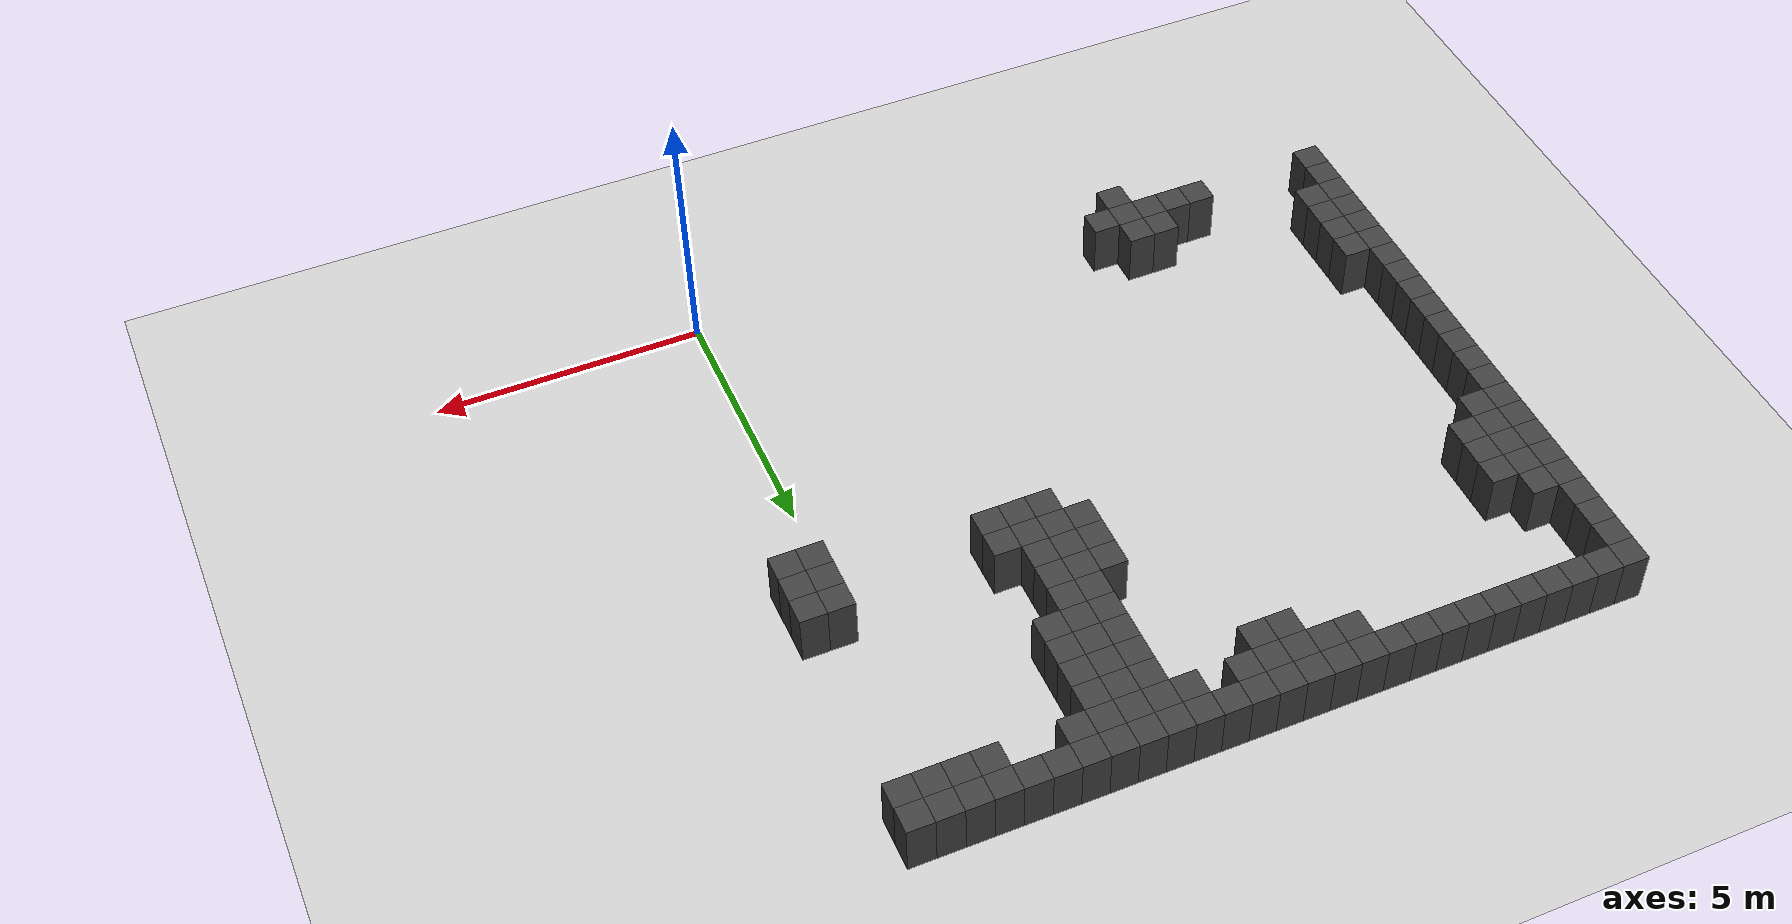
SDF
<sdf version="1.7">
 <world name="map_5836">
  <model name="ground_plane">
   <static>true</static>
   <link name="link">
    <collision name="collision">
     <geometry><plane><normal>0 0 1</normal><size>200 200</size></plane></geometry>
    </collision>
    <visual name="visual">
     <geometry><plane><normal>0 0 1</normal><size>200 200</size></plane></geometry>
     <material><ambient>0.8 0.8 0.8 1</ambient><diffuse>0.8 0.8 0.8 1</diffuse></material>
    </visual>
   </link>
  </model>
  <model name="maze_environment">
   <static>true</static>
   <link name="wall_0">
    <pose>-12.250 12.250 0.500 0 0 0</pose>
    <collision name="col"><geometry><box><size>0.5 0.5 1.0</size></box></geometry></collision>
    <visual name="vis">
     <geometry><box><size>0.5 0.5 1.0</size></box></geometry>
     <material><ambient>0.15 0.15 0.15 1</ambient><diffuse>0.25 0.25 0.25 1</diffuse></material>
    </visual>
   </link>
   <link name="wall_1">
    <pose>-11.750 12.250 0.500 0 0 0</pose>
    <collision name="col"><geometry><box><size>0.5 0.5 1.0</size></box></geometry></collision>
    <visual name="vis">
     <geometry><box><size>0.5 0.5 1.0</size></box></geometry>
     <material><ambient>0.15 0.15 0.15 1</ambient><diffuse>0.25 0.25 0.25 1</diffuse></material>
    </visual>
   </link>
   <link name="wall_2">
    <pose>-11.250 12.250 0.500 0 0 0</pose>
    <collision name="col"><geometry><box><size>0.5 0.5 1.0</size></box></geometry></collision>
    <visual name="vis">
     <geometry><box><size>0.5 0.5 1.0</size></box></geometry>
     <material><ambient>0.15 0.15 0.15 1</ambient><diffuse>0.25 0.25 0.25 1</diffuse></material>
    </visual>
   </link>
   <link name="wall_3">
    <pose>-10.750 12.250 0.500 0 0 0</pose>
    <collision name="col"><geometry><box><size>0.5 0.5 1.0</size></box></geometry></collision>
    <visual name="vis">
     <geometry><box><size>0.5 0.5 1.0</size></box></geometry>
     <material><ambient>0.15 0.15 0.15 1</ambient><diffuse>0.25 0.25 0.25 1</diffuse></material>
    </visual>
   </link>
   <link name="wall_4">
    <pose>-10.250 12.250 0.500 0 0 0</pose>
    <collision name="col"><geometry><box><size>0.5 0.5 1.0</size></box></geometry></collision>
    <visual name="vis">
     <geometry><box><size>0.5 0.5 1.0</size></box></geometry>
     <material><ambient>0.15 0.15 0.15 1</ambient><diffuse>0.25 0.25 0.25 1</diffuse></material>
    </visual>
   </link>
   <link name="wall_5">
    <pose>-9.750 12.250 0.500 0 0 0</pose>
    <collision name="col"><geometry><box><size>0.5 0.5 1.0</size></box></geometry></collision>
    <visual name="vis">
     <geometry><box><size>0.5 0.5 1.0</size></box></geometry>
     <material><ambient>0.15 0.15 0.15 1</ambient><diffuse>0.25 0.25 0.25 1</diffuse></material>
    </visual>
   </link>
   <link name="wall_6">
    <pose>-9.250 12.250 0.500 0 0 0</pose>
    <collision name="col"><geometry><box><size>0.5 0.5 1.0</size></box></geometry></collision>
    <visual name="vis">
     <geometry><box><size>0.5 0.5 1.0</size></box></geometry>
     <material><ambient>0.15 0.15 0.15 1</ambient><diffuse>0.25 0.25 0.25 1</diffuse></material>
    </visual>
   </link>
   <link name="wall_7">
    <pose>-8.750 12.250 0.500 0 0 0</pose>
    <collision name="col"><geometry><box><size>0.5 0.5 1.0</size></box></geometry></collision>
    <visual name="vis">
     <geometry><box><size>0.5 0.5 1.0</size></box></geometry>
     <material><ambient>0.15 0.15 0.15 1</ambient><diffuse>0.25 0.25 0.25 1</diffuse></material>
    </visual>
   </link>
   <link name="wall_8">
    <pose>-8.250 12.250 0.500 0 0 0</pose>
    <collision name="col"><geometry><box><size>0.5 0.5 1.0</size></box></geometry></collision>
    <visual name="vis">
     <geometry><box><size>0.5 0.5 1.0</size></box></geometry>
     <material><ambient>0.15 0.15 0.15 1</ambient><diffuse>0.25 0.25 0.25 1</diffuse></material>
    </visual>
   </link>
   <link name="wall_9">
    <pose>-7.750 12.250 0.500 0 0 0</pose>
    <collision name="col"><geometry><box><size>0.5 0.5 1.0</size></box></geometry></collision>
    <visual name="vis">
     <geometry><box><size>0.5 0.5 1.0</size></box></geometry>
     <material><ambient>0.15 0.15 0.15 1</ambient><diffuse>0.25 0.25 0.25 1</diffuse></material>
    </visual>
   </link>
   <link name="wall_10">
    <pose>-7.250 12.250 0.500 0 0 0</pose>
    <collision name="col"><geometry><box><size>0.5 0.5 1.0</size></box></geometry></collision>
    <visual name="vis">
     <geometry><box><size>0.5 0.5 1.0</size></box></geometry>
     <material><ambient>0.15 0.15 0.15 1</ambient><diffuse>0.25 0.25 0.25 1</diffuse></material>
    </visual>
   </link>
   <link name="wall_11">
    <pose>-6.750 12.250 0.500 0 0 0</pose>
    <collision name="col"><geometry><box><size>0.5 0.5 1.0</size></box></geometry></collision>
    <visual name="vis">
     <geometry><box><size>0.5 0.5 1.0</size></box></geometry>
     <material><ambient>0.15 0.15 0.15 1</ambient><diffuse>0.25 0.25 0.25 1</diffuse></material>
    </visual>
   </link>
   <link name="wall_12">
    <pose>-6.250 12.250 0.500 0 0 0</pose>
    <collision name="col"><geometry><box><size>0.5 0.5 1.0</size></box></geometry></collision>
    <visual name="vis">
     <geometry><box><size>0.5 0.5 1.0</size></box></geometry>
     <material><ambient>0.15 0.15 0.15 1</ambient><diffuse>0.25 0.25 0.25 1</diffuse></material>
    </visual>
   </link>
   <link name="wall_13">
    <pose>-5.750 12.250 0.500 0 0 0</pose>
    <collision name="col"><geometry><box><size>0.5 0.5 1.0</size></box></geometry></collision>
    <visual name="vis">
     <geometry><box><size>0.5 0.5 1.0</size></box></geometry>
     <material><ambient>0.15 0.15 0.15 1</ambient><diffuse>0.25 0.25 0.25 1</diffuse></material>
    </visual>
   </link>
   <link name="wall_14">
    <pose>-5.250 12.250 0.500 0 0 0</pose>
    <collision name="col"><geometry><box><size>0.5 0.5 1.0</size></box></geometry></collision>
    <visual name="vis">
     <geometry><box><size>0.5 0.5 1.0</size></box></geometry>
     <material><ambient>0.15 0.15 0.15 1</ambient><diffuse>0.25 0.25 0.25 1</diffuse></material>
    </visual>
   </link>
   <link name="wall_15">
    <pose>-4.750 12.250 0.500 0 0 0</pose>
    <collision name="col"><geometry><box><size>0.5 0.5 1.0</size></box></geometry></collision>
    <visual name="vis">
     <geometry><box><size>0.5 0.5 1.0</size></box></geometry>
     <material><ambient>0.15 0.15 0.15 1</ambient><diffuse>0.25 0.25 0.25 1</diffuse></material>
    </visual>
   </link>
   <link name="wall_16">
    <pose>-4.250 12.250 0.500 0 0 0</pose>
    <collision name="col"><geometry><box><size>0.5 0.5 1.0</size></box></geometry></collision>
    <visual name="vis">
     <geometry><box><size>0.5 0.5 1.0</size></box></geometry>
     <material><ambient>0.15 0.15 0.15 1</ambient><diffuse>0.25 0.25 0.25 1</diffuse></material>
    </visual>
   </link>
   <link name="wall_17">
    <pose>-3.750 12.250 0.500 0 0 0</pose>
    <collision name="col"><geometry><box><size>0.5 0.5 1.0</size></box></geometry></collision>
    <visual name="vis">
     <geometry><box><size>0.5 0.5 1.0</size></box></geometry>
     <material><ambient>0.15 0.15 0.15 1</ambient><diffuse>0.25 0.25 0.25 1</diffuse></material>
    </visual>
   </link>
   <link name="wall_18">
    <pose>-3.250 12.250 0.500 0 0 0</pose>
    <collision name="col"><geometry><box><size>0.5 0.5 1.0</size></box></geometry></collision>
    <visual name="vis">
     <geometry><box><size>0.5 0.5 1.0</size></box></geometry>
     <material><ambient>0.15 0.15 0.15 1</ambient><diffuse>0.25 0.25 0.25 1</diffuse></material>
    </visual>
   </link>
   <link name="wall_19">
    <pose>-2.750 12.250 0.500 0 0 0</pose>
    <collision name="col"><geometry><box><size>0.5 0.5 1.0</size></box></geometry></collision>
    <visual name="vis">
     <geometry><box><size>0.5 0.5 1.0</size></box></geometry>
     <material><ambient>0.15 0.15 0.15 1</ambient><diffuse>0.25 0.25 0.25 1</diffuse></material>
    </visual>
   </link>
   <link name="wall_20">
    <pose>-2.250 12.250 0.500 0 0 0</pose>
    <collision name="col"><geometry><box><size>0.5 0.5 1.0</size></box></geometry></collision>
    <visual name="vis">
     <geometry><box><size>0.5 0.5 1.0</size></box></geometry>
     <material><ambient>0.15 0.15 0.15 1</ambient><diffuse>0.25 0.25 0.25 1</diffuse></material>
    </visual>
   </link>
   <link name="wall_21">
    <pose>-1.750 12.250 0.500 0 0 0</pose>
    <collision name="col"><geometry><box><size>0.5 0.5 1.0</size></box></geometry></collision>
    <visual name="vis">
     <geometry><box><size>0.5 0.5 1.0</size></box></geometry>
     <material><ambient>0.15 0.15 0.15 1</ambient><diffuse>0.25 0.25 0.25 1</diffuse></material>
    </visual>
   </link>
   <link name="wall_22">
    <pose>-1.250 12.250 0.500 0 0 0</pose>
    <collision name="col"><geometry><box><size>0.5 0.5 1.0</size></box></geometry></collision>
    <visual name="vis">
     <geometry><box><size>0.5 0.5 1.0</size></box></geometry>
     <material><ambient>0.15 0.15 0.15 1</ambient><diffuse>0.25 0.25 0.25 1</diffuse></material>
    </visual>
   </link>
   <link name="wall_23">
    <pose>-0.750 12.250 0.500 0 0 0</pose>
    <collision name="col"><geometry><box><size>0.5 0.5 1.0</size></box></geometry></collision>
    <visual name="vis">
     <geometry><box><size>0.5 0.5 1.0</size></box></geometry>
     <material><ambient>0.15 0.15 0.15 1</ambient><diffuse>0.25 0.25 0.25 1</diffuse></material>
    </visual>
   </link>
   <link name="wall_24">
    <pose>-0.250 12.250 0.500 0 0 0</pose>
    <collision name="col"><geometry><box><size>0.5 0.5 1.0</size></box></geometry></collision>
    <visual name="vis">
     <geometry><box><size>0.5 0.5 1.0</size></box></geometry>
     <material><ambient>0.15 0.15 0.15 1</ambient><diffuse>0.25 0.25 0.25 1</diffuse></material>
    </visual>
   </link>
   <link name="wall_25">
    <pose>0.250 12.250 0.500 0 0 0</pose>
    <collision name="col"><geometry><box><size>0.5 0.5 1.0</size></box></geometry></collision>
    <visual name="vis">
     <geometry><box><size>0.5 0.5 1.0</size></box></geometry>
     <material><ambient>0.15 0.15 0.15 1</ambient><diffuse>0.25 0.25 0.25 1</diffuse></material>
    </visual>
   </link>
   <link name="wall_26">
    <pose>0.750 12.250 0.500 0 0 0</pose>
    <collision name="col"><geometry><box><size>0.5 0.5 1.0</size></box></geometry></collision>
    <visual name="vis">
     <geometry><box><size>0.5 0.5 1.0</size></box></geometry>
     <material><ambient>0.15 0.15 0.15 1</ambient><diffuse>0.25 0.25 0.25 1</diffuse></material>
    </visual>
   </link>
   <link name="wall_50">
    <pose>-12.250 11.750 0.500 0 0 0</pose>
    <collision name="col"><geometry><box><size>0.5 0.5 1.0</size></box></geometry></collision>
    <visual name="vis">
     <geometry><box><size>0.5 0.5 1.0</size></box></geometry>
     <material><ambient>0.15 0.15 0.15 1</ambient><diffuse>0.25 0.25 0.25 1</diffuse></material>
    </visual>
   </link>
   <link name="wall_51">
    <pose>-7.250 11.750 0.500 0 0 0</pose>
    <collision name="col"><geometry><box><size>0.5 0.5 1.0</size></box></geometry></collision>
    <visual name="vis">
     <geometry><box><size>0.5 0.5 1.0</size></box></geometry>
     <material><ambient>0.15 0.15 0.15 1</ambient><diffuse>0.25 0.25 0.25 1</diffuse></material>
    </visual>
   </link>
   <link name="wall_52">
    <pose>-6.750 11.750 0.500 0 0 0</pose>
    <collision name="col"><geometry><box><size>0.5 0.5 1.0</size></box></geometry></collision>
    <visual name="vis">
     <geometry><box><size>0.5 0.5 1.0</size></box></geometry>
     <material><ambient>0.15 0.15 0.15 1</ambient><diffuse>0.25 0.25 0.25 1</diffuse></material>
    </visual>
   </link>
   <link name="wall_53">
    <pose>-6.250 11.750 0.500 0 0 0</pose>
    <collision name="col"><geometry><box><size>0.5 0.5 1.0</size></box></geometry></collision>
    <visual name="vis">
     <geometry><box><size>0.5 0.5 1.0</size></box></geometry>
     <material><ambient>0.15 0.15 0.15 1</ambient><diffuse>0.25 0.25 0.25 1</diffuse></material>
    </visual>
   </link>
   <link name="wall_54">
    <pose>-5.750 11.750 0.500 0 0 0</pose>
    <collision name="col"><geometry><box><size>0.5 0.5 1.0</size></box></geometry></collision>
    <visual name="vis">
     <geometry><box><size>0.5 0.5 1.0</size></box></geometry>
     <material><ambient>0.15 0.15 0.15 1</ambient><diffuse>0.25 0.25 0.25 1</diffuse></material>
    </visual>
   </link>
   <link name="wall_55">
    <pose>-5.250 11.750 0.500 0 0 0</pose>
    <collision name="col"><geometry><box><size>0.5 0.5 1.0</size></box></geometry></collision>
    <visual name="vis">
     <geometry><box><size>0.5 0.5 1.0</size></box></geometry>
     <material><ambient>0.15 0.15 0.15 1</ambient><diffuse>0.25 0.25 0.25 1</diffuse></material>
    </visual>
   </link>
   <link name="wall_56">
    <pose>-4.250 11.750 0.500 0 0 0</pose>
    <collision name="col"><geometry><box><size>0.5 0.5 1.0</size></box></geometry></collision>
    <visual name="vis">
     <geometry><box><size>0.5 0.5 1.0</size></box></geometry>
     <material><ambient>0.15 0.15 0.15 1</ambient><diffuse>0.25 0.25 0.25 1</diffuse></material>
    </visual>
   </link>
   <link name="wall_57">
    <pose>-3.750 11.750 0.500 0 0 0</pose>
    <collision name="col"><geometry><box><size>0.5 0.5 1.0</size></box></geometry></collision>
    <visual name="vis">
     <geometry><box><size>0.5 0.5 1.0</size></box></geometry>
     <material><ambient>0.15 0.15 0.15 1</ambient><diffuse>0.25 0.25 0.25 1</diffuse></material>
    </visual>
   </link>
   <link name="wall_58">
    <pose>-3.250 11.750 0.500 0 0 0</pose>
    <collision name="col"><geometry><box><size>0.5 0.5 1.0</size></box></geometry></collision>
    <visual name="vis">
     <geometry><box><size>0.5 0.5 1.0</size></box></geometry>
     <material><ambient>0.15 0.15 0.15 1</ambient><diffuse>0.25 0.25 0.25 1</diffuse></material>
    </visual>
   </link>
   <link name="wall_59">
    <pose>-2.750 11.750 0.500 0 0 0</pose>
    <collision name="col"><geometry><box><size>0.5 0.5 1.0</size></box></geometry></collision>
    <visual name="vis">
     <geometry><box><size>0.5 0.5 1.0</size></box></geometry>
     <material><ambient>0.15 0.15 0.15 1</ambient><diffuse>0.25 0.25 0.25 1</diffuse></material>
    </visual>
   </link>
   <link name="wall_60">
    <pose>-2.250 11.750 0.500 0 0 0</pose>
    <collision name="col"><geometry><box><size>0.5 0.5 1.0</size></box></geometry></collision>
    <visual name="vis">
     <geometry><box><size>0.5 0.5 1.0</size></box></geometry>
     <material><ambient>0.15 0.15 0.15 1</ambient><diffuse>0.25 0.25 0.25 1</diffuse></material>
    </visual>
   </link>
   <link name="wall_61">
    <pose>-0.750 11.750 0.500 0 0 0</pose>
    <collision name="col"><geometry><box><size>0.5 0.5 1.0</size></box></geometry></collision>
    <visual name="vis">
     <geometry><box><size>0.5 0.5 1.0</size></box></geometry>
     <material><ambient>0.15 0.15 0.15 1</ambient><diffuse>0.25 0.25 0.25 1</diffuse></material>
    </visual>
   </link>
   <link name="wall_62">
    <pose>-0.250 11.750 0.500 0 0 0</pose>
    <collision name="col"><geometry><box><size>0.5 0.5 1.0</size></box></geometry></collision>
    <visual name="vis">
     <geometry><box><size>0.5 0.5 1.0</size></box></geometry>
     <material><ambient>0.15 0.15 0.15 1</ambient><diffuse>0.25 0.25 0.25 1</diffuse></material>
    </visual>
   </link>
   <link name="wall_63">
    <pose>0.250 11.750 0.500 0 0 0</pose>
    <collision name="col"><geometry><box><size>0.5 0.5 1.0</size></box></geometry></collision>
    <visual name="vis">
     <geometry><box><size>0.5 0.5 1.0</size></box></geometry>
     <material><ambient>0.15 0.15 0.15 1</ambient><diffuse>0.25 0.25 0.25 1</diffuse></material>
    </visual>
   </link>
   <link name="wall_64">
    <pose>0.750 11.750 0.500 0 0 0</pose>
    <collision name="col"><geometry><box><size>0.5 0.5 1.0</size></box></geometry></collision>
    <visual name="vis">
     <geometry><box><size>0.5 0.5 1.0</size></box></geometry>
     <material><ambient>0.15 0.15 0.15 1</ambient><diffuse>0.25 0.25 0.25 1</diffuse></material>
    </visual>
   </link>
   <link name="wall_72">
    <pose>-12.250 11.250 0.500 0 0 0</pose>
    <collision name="col"><geometry><box><size>0.5 0.5 1.0</size></box></geometry></collision>
    <visual name="vis">
     <geometry><box><size>0.5 0.5 1.0</size></box></geometry>
     <material><ambient>0.15 0.15 0.15 1</ambient><diffuse>0.25 0.25 0.25 1</diffuse></material>
    </visual>
   </link>
   <link name="wall_73">
    <pose>-6.250 11.250 0.500 0 0 0</pose>
    <collision name="col"><geometry><box><size>0.5 0.5 1.0</size></box></geometry></collision>
    <visual name="vis">
     <geometry><box><size>0.5 0.5 1.0</size></box></geometry>
     <material><ambient>0.15 0.15 0.15 1</ambient><diffuse>0.25 0.25 0.25 1</diffuse></material>
    </visual>
   </link>
   <link name="wall_74">
    <pose>-5.750 11.250 0.500 0 0 0</pose>
    <collision name="col"><geometry><box><size>0.5 0.5 1.0</size></box></geometry></collision>
    <visual name="vis">
     <geometry><box><size>0.5 0.5 1.0</size></box></geometry>
     <material><ambient>0.15 0.15 0.15 1</ambient><diffuse>0.25 0.25 0.25 1</diffuse></material>
    </visual>
   </link>
   <link name="wall_75">
    <pose>-3.750 11.250 0.500 0 0 0</pose>
    <collision name="col"><geometry><box><size>0.5 0.5 1.0</size></box></geometry></collision>
    <visual name="vis">
     <geometry><box><size>0.5 0.5 1.0</size></box></geometry>
     <material><ambient>0.15 0.15 0.15 1</ambient><diffuse>0.25 0.25 0.25 1</diffuse></material>
    </visual>
   </link>
   <link name="wall_76">
    <pose>-3.250 11.250 0.500 0 0 0</pose>
    <collision name="col"><geometry><box><size>0.5 0.5 1.0</size></box></geometry></collision>
    <visual name="vis">
     <geometry><box><size>0.5 0.5 1.0</size></box></geometry>
     <material><ambient>0.15 0.15 0.15 1</ambient><diffuse>0.25 0.25 0.25 1</diffuse></material>
    </visual>
   </link>
   <link name="wall_77">
    <pose>-2.750 11.250 0.500 0 0 0</pose>
    <collision name="col"><geometry><box><size>0.5 0.5 1.0</size></box></geometry></collision>
    <visual name="vis">
     <geometry><box><size>0.5 0.5 1.0</size></box></geometry>
     <material><ambient>0.15 0.15 0.15 1</ambient><diffuse>0.25 0.25 0.25 1</diffuse></material>
    </visual>
   </link>
   <link name="wall_83">
    <pose>-12.250 10.750 0.500 0 0 0</pose>
    <collision name="col"><geometry><box><size>0.5 0.5 1.0</size></box></geometry></collision>
    <visual name="vis">
     <geometry><box><size>0.5 0.5 1.0</size></box></geometry>
     <material><ambient>0.15 0.15 0.15 1</ambient><diffuse>0.25 0.25 0.25 1</diffuse></material>
    </visual>
   </link>
   <link name="wall_84">
    <pose>-3.750 10.750 0.500 0 0 0</pose>
    <collision name="col"><geometry><box><size>0.5 0.5 1.0</size></box></geometry></collision>
    <visual name="vis">
     <geometry><box><size>0.5 0.5 1.0</size></box></geometry>
     <material><ambient>0.15 0.15 0.15 1</ambient><diffuse>0.25 0.25 0.25 1</diffuse></material>
    </visual>
   </link>
   <link name="wall_85">
    <pose>-3.250 10.750 0.500 0 0 0</pose>
    <collision name="col"><geometry><box><size>0.5 0.5 1.0</size></box></geometry></collision>
    <visual name="vis">
     <geometry><box><size>0.5 0.5 1.0</size></box></geometry>
     <material><ambient>0.15 0.15 0.15 1</ambient><diffuse>0.25 0.25 0.25 1</diffuse></material>
    </visual>
   </link>
   <link name="wall_86">
    <pose>-2.750 10.750 0.500 0 0 0</pose>
    <collision name="col"><geometry><box><size>0.5 0.5 1.0</size></box></geometry></collision>
    <visual name="vis">
     <geometry><box><size>0.5 0.5 1.0</size></box></geometry>
     <material><ambient>0.15 0.15 0.15 1</ambient><diffuse>0.25 0.25 0.25 1</diffuse></material>
    </visual>
   </link>
   <link name="wall_89">
    <pose>-12.250 10.250 0.500 0 0 0</pose>
    <collision name="col"><geometry><box><size>0.5 0.5 1.0</size></box></geometry></collision>
    <visual name="vis">
     <geometry><box><size>0.5 0.5 1.0</size></box></geometry>
     <material><ambient>0.15 0.15 0.15 1</ambient><diffuse>0.25 0.25 0.25 1</diffuse></material>
    </visual>
   </link>
   <link name="wall_90">
    <pose>-11.750 10.250 0.500 0 0 0</pose>
    <collision name="col"><geometry><box><size>0.5 0.5 1.0</size></box></geometry></collision>
    <visual name="vis">
     <geometry><box><size>0.5 0.5 1.0</size></box></geometry>
     <material><ambient>0.15 0.15 0.15 1</ambient><diffuse>0.25 0.25 0.25 1</diffuse></material>
    </visual>
   </link>
   <link name="wall_91">
    <pose>-3.750 10.250 0.500 0 0 0</pose>
    <collision name="col"><geometry><box><size>0.5 0.5 1.0</size></box></geometry></collision>
    <visual name="vis">
     <geometry><box><size>0.5 0.5 1.0</size></box></geometry>
     <material><ambient>0.15 0.15 0.15 1</ambient><diffuse>0.25 0.25 0.25 1</diffuse></material>
    </visual>
   </link>
   <link name="wall_92">
    <pose>-3.250 10.250 0.500 0 0 0</pose>
    <collision name="col"><geometry><box><size>0.5 0.5 1.0</size></box></geometry></collision>
    <visual name="vis">
     <geometry><box><size>0.5 0.5 1.0</size></box></geometry>
     <material><ambient>0.15 0.15 0.15 1</ambient><diffuse>0.25 0.25 0.25 1</diffuse></material>
    </visual>
   </link>
   <link name="wall_93">
    <pose>-2.750 10.250 0.500 0 0 0</pose>
    <collision name="col"><geometry><box><size>0.5 0.5 1.0</size></box></geometry></collision>
    <visual name="vis">
     <geometry><box><size>0.5 0.5 1.0</size></box></geometry>
     <material><ambient>0.15 0.15 0.15 1</ambient><diffuse>0.25 0.25 0.25 1</diffuse></material>
    </visual>
   </link>
   <link name="wall_95">
    <pose>-12.250 9.750 0.500 0 0 0</pose>
    <collision name="col"><geometry><box><size>0.5 0.5 1.0</size></box></geometry></collision>
    <visual name="vis">
     <geometry><box><size>0.5 0.5 1.0</size></box></geometry>
     <material><ambient>0.15 0.15 0.15 1</ambient><diffuse>0.25 0.25 0.25 1</diffuse></material>
    </visual>
   </link>
   <link name="wall_96">
    <pose>-11.750 9.750 0.500 0 0 0</pose>
    <collision name="col"><geometry><box><size>0.5 0.5 1.0</size></box></geometry></collision>
    <visual name="vis">
     <geometry><box><size>0.5 0.5 1.0</size></box></geometry>
     <material><ambient>0.15 0.15 0.15 1</ambient><diffuse>0.25 0.25 0.25 1</diffuse></material>
    </visual>
   </link>
   <link name="wall_97">
    <pose>-11.250 9.750 0.500 0 0 0</pose>
    <collision name="col"><geometry><box><size>0.5 0.5 1.0</size></box></geometry></collision>
    <visual name="vis">
     <geometry><box><size>0.5 0.5 1.0</size></box></geometry>
     <material><ambient>0.15 0.15 0.15 1</ambient><diffuse>0.25 0.25 0.25 1</diffuse></material>
    </visual>
   </link>
   <link name="wall_98">
    <pose>-3.750 9.750 0.500 0 0 0</pose>
    <collision name="col"><geometry><box><size>0.5 0.5 1.0</size></box></geometry></collision>
    <visual name="vis">
     <geometry><box><size>0.5 0.5 1.0</size></box></geometry>
     <material><ambient>0.15 0.15 0.15 1</ambient><diffuse>0.25 0.25 0.25 1</diffuse></material>
    </visual>
   </link>
   <link name="wall_99">
    <pose>-3.250 9.750 0.500 0 0 0</pose>
    <collision name="col"><geometry><box><size>0.5 0.5 1.0</size></box></geometry></collision>
    <visual name="vis">
     <geometry><box><size>0.5 0.5 1.0</size></box></geometry>
     <material><ambient>0.15 0.15 0.15 1</ambient><diffuse>0.25 0.25 0.25 1</diffuse></material>
    </visual>
   </link>
   <link name="wall_100">
    <pose>-2.750 9.750 0.500 0 0 0</pose>
    <collision name="col"><geometry><box><size>0.5 0.5 1.0</size></box></geometry></collision>
    <visual name="vis">
     <geometry><box><size>0.5 0.5 1.0</size></box></geometry>
     <material><ambient>0.15 0.15 0.15 1</ambient><diffuse>0.25 0.25 0.25 1</diffuse></material>
    </visual>
   </link>
   <link name="wall_102">
    <pose>-12.250 9.250 0.500 0 0 0</pose>
    <collision name="col"><geometry><box><size>0.5 0.5 1.0</size></box></geometry></collision>
    <visual name="vis">
     <geometry><box><size>0.5 0.5 1.0</size></box></geometry>
     <material><ambient>0.15 0.15 0.15 1</ambient><diffuse>0.25 0.25 0.25 1</diffuse></material>
    </visual>
   </link>
   <link name="wall_103">
    <pose>-11.750 9.250 0.500 0 0 0</pose>
    <collision name="col"><geometry><box><size>0.5 0.5 1.0</size></box></geometry></collision>
    <visual name="vis">
     <geometry><box><size>0.5 0.5 1.0</size></box></geometry>
     <material><ambient>0.15 0.15 0.15 1</ambient><diffuse>0.25 0.25 0.25 1</diffuse></material>
    </visual>
   </link>
   <link name="wall_104">
    <pose>-11.250 9.250 0.500 0 0 0</pose>
    <collision name="col"><geometry><box><size>0.5 0.5 1.0</size></box></geometry></collision>
    <visual name="vis">
     <geometry><box><size>0.5 0.5 1.0</size></box></geometry>
     <material><ambient>0.15 0.15 0.15 1</ambient><diffuse>0.25 0.25 0.25 1</diffuse></material>
    </visual>
   </link>
   <link name="wall_105">
    <pose>-3.750 9.250 0.500 0 0 0</pose>
    <collision name="col"><geometry><box><size>0.5 0.5 1.0</size></box></geometry></collision>
    <visual name="vis">
     <geometry><box><size>0.5 0.5 1.0</size></box></geometry>
     <material><ambient>0.15 0.15 0.15 1</ambient><diffuse>0.25 0.25 0.25 1</diffuse></material>
    </visual>
   </link>
   <link name="wall_106">
    <pose>-3.250 9.250 0.500 0 0 0</pose>
    <collision name="col"><geometry><box><size>0.5 0.5 1.0</size></box></geometry></collision>
    <visual name="vis">
     <geometry><box><size>0.5 0.5 1.0</size></box></geometry>
     <material><ambient>0.15 0.15 0.15 1</ambient><diffuse>0.25 0.25 0.25 1</diffuse></material>
    </visual>
   </link>
   <link name="wall_111">
    <pose>-12.250 8.750 0.500 0 0 0</pose>
    <collision name="col"><geometry><box><size>0.5 0.5 1.0</size></box></geometry></collision>
    <visual name="vis">
     <geometry><box><size>0.5 0.5 1.0</size></box></geometry>
     <material><ambient>0.15 0.15 0.15 1</ambient><diffuse>0.25 0.25 0.25 1</diffuse></material>
    </visual>
   </link>
   <link name="wall_112">
    <pose>-11.750 8.750 0.500 0 0 0</pose>
    <collision name="col"><geometry><box><size>0.5 0.5 1.0</size></box></geometry></collision>
    <visual name="vis">
     <geometry><box><size>0.5 0.5 1.0</size></box></geometry>
     <material><ambient>0.15 0.15 0.15 1</ambient><diffuse>0.25 0.25 0.25 1</diffuse></material>
    </visual>
   </link>
   <link name="wall_113">
    <pose>-11.250 8.750 0.500 0 0 0</pose>
    <collision name="col"><geometry><box><size>0.5 0.5 1.0</size></box></geometry></collision>
    <visual name="vis">
     <geometry><box><size>0.5 0.5 1.0</size></box></geometry>
     <material><ambient>0.15 0.15 0.15 1</ambient><diffuse>0.25 0.25 0.25 1</diffuse></material>
    </visual>
   </link>
   <link name="wall_114">
    <pose>-4.250 8.750 0.500 0 0 0</pose>
    <collision name="col"><geometry><box><size>0.5 0.5 1.0</size></box></geometry></collision>
    <visual name="vis">
     <geometry><box><size>0.5 0.5 1.0</size></box></geometry>
     <material><ambient>0.15 0.15 0.15 1</ambient><diffuse>0.25 0.25 0.25 1</diffuse></material>
    </visual>
   </link>
   <link name="wall_115">
    <pose>-3.750 8.750 0.500 0 0 0</pose>
    <collision name="col"><geometry><box><size>0.5 0.5 1.0</size></box></geometry></collision>
    <visual name="vis">
     <geometry><box><size>0.5 0.5 1.0</size></box></geometry>
     <material><ambient>0.15 0.15 0.15 1</ambient><diffuse>0.25 0.25 0.25 1</diffuse></material>
    </visual>
   </link>
   <link name="wall_116">
    <pose>-3.250 8.750 0.500 0 0 0</pose>
    <collision name="col"><geometry><box><size>0.5 0.5 1.0</size></box></geometry></collision>
    <visual name="vis">
     <geometry><box><size>0.5 0.5 1.0</size></box></geometry>
     <material><ambient>0.15 0.15 0.15 1</ambient><diffuse>0.25 0.25 0.25 1</diffuse></material>
    </visual>
   </link>
   <link name="wall_118">
    <pose>-12.250 8.250 0.500 0 0 0</pose>
    <collision name="col"><geometry><box><size>0.5 0.5 1.0</size></box></geometry></collision>
    <visual name="vis">
     <geometry><box><size>0.5 0.5 1.0</size></box></geometry>
     <material><ambient>0.15 0.15 0.15 1</ambient><diffuse>0.25 0.25 0.25 1</diffuse></material>
    </visual>
   </link>
   <link name="wall_119">
    <pose>-11.750 8.250 0.500 0 0 0</pose>
    <collision name="col"><geometry><box><size>0.5 0.5 1.0</size></box></geometry></collision>
    <visual name="vis">
     <geometry><box><size>0.5 0.5 1.0</size></box></geometry>
     <material><ambient>0.15 0.15 0.15 1</ambient><diffuse>0.25 0.25 0.25 1</diffuse></material>
    </visual>
   </link>
   <link name="wall_120">
    <pose>-4.250 8.250 0.500 0 0 0</pose>
    <collision name="col"><geometry><box><size>0.5 0.5 1.0</size></box></geometry></collision>
    <visual name="vis">
     <geometry><box><size>0.5 0.5 1.0</size></box></geometry>
     <material><ambient>0.15 0.15 0.15 1</ambient><diffuse>0.25 0.25 0.25 1</diffuse></material>
    </visual>
   </link>
   <link name="wall_121">
    <pose>-3.750 8.250 0.500 0 0 0</pose>
    <collision name="col"><geometry><box><size>0.5 0.5 1.0</size></box></geometry></collision>
    <visual name="vis">
     <geometry><box><size>0.5 0.5 1.0</size></box></geometry>
     <material><ambient>0.15 0.15 0.15 1</ambient><diffuse>0.25 0.25 0.25 1</diffuse></material>
    </visual>
   </link>
   <link name="wall_122">
    <pose>-3.250 8.250 0.500 0 0 0</pose>
    <collision name="col"><geometry><box><size>0.5 0.5 1.0</size></box></geometry></collision>
    <visual name="vis">
     <geometry><box><size>0.5 0.5 1.0</size></box></geometry>
     <material><ambient>0.15 0.15 0.15 1</ambient><diffuse>0.25 0.25 0.25 1</diffuse></material>
    </visual>
   </link>
   <link name="wall_127">
    <pose>-12.250 7.750 0.500 0 0 0</pose>
    <collision name="col"><geometry><box><size>0.5 0.5 1.0</size></box></geometry></collision>
    <visual name="vis">
     <geometry><box><size>0.5 0.5 1.0</size></box></geometry>
     <material><ambient>0.15 0.15 0.15 1</ambient><diffuse>0.25 0.25 0.25 1</diffuse></material>
    </visual>
   </link>
   <link name="wall_128">
    <pose>-4.250 7.750 0.500 0 0 0</pose>
    <collision name="col"><geometry><box><size>0.5 0.5 1.0</size></box></geometry></collision>
    <visual name="vis">
     <geometry><box><size>0.5 0.5 1.0</size></box></geometry>
     <material><ambient>0.15 0.15 0.15 1</ambient><diffuse>0.25 0.25 0.25 1</diffuse></material>
    </visual>
   </link>
   <link name="wall_129">
    <pose>-3.750 7.750 0.500 0 0 0</pose>
    <collision name="col"><geometry><box><size>0.5 0.5 1.0</size></box></geometry></collision>
    <visual name="vis">
     <geometry><box><size>0.5 0.5 1.0</size></box></geometry>
     <material><ambient>0.15 0.15 0.15 1</ambient><diffuse>0.25 0.25 0.25 1</diffuse></material>
    </visual>
   </link>
   <link name="wall_130">
    <pose>-3.250 7.750 0.500 0 0 0</pose>
    <collision name="col"><geometry><box><size>0.5 0.5 1.0</size></box></geometry></collision>
    <visual name="vis">
     <geometry><box><size>0.5 0.5 1.0</size></box></geometry>
     <material><ambient>0.15 0.15 0.15 1</ambient><diffuse>0.25 0.25 0.25 1</diffuse></material>
    </visual>
   </link>
   <link name="wall_131">
    <pose>-2.750 7.750 0.500 0 0 0</pose>
    <collision name="col"><geometry><box><size>0.5 0.5 1.0</size></box></geometry></collision>
    <visual name="vis">
     <geometry><box><size>0.5 0.5 1.0</size></box></geometry>
     <material><ambient>0.15 0.15 0.15 1</ambient><diffuse>0.25 0.25 0.25 1</diffuse></material>
    </visual>
   </link>
   <link name="wall_132">
    <pose>0.250 7.750 0.500 0 0 0</pose>
    <collision name="col"><geometry><box><size>0.5 0.5 1.0</size></box></geometry></collision>
    <visual name="vis">
     <geometry><box><size>0.5 0.5 1.0</size></box></geometry>
     <material><ambient>0.15 0.15 0.15 1</ambient><diffuse>0.25 0.25 0.25 1</diffuse></material>
    </visual>
   </link>
   <link name="wall_133">
    <pose>0.750 7.750 0.500 0 0 0</pose>
    <collision name="col"><geometry><box><size>0.5 0.5 1.0</size></box></geometry></collision>
    <visual name="vis">
     <geometry><box><size>0.5 0.5 1.0</size></box></geometry>
     <material><ambient>0.15 0.15 0.15 1</ambient><diffuse>0.25 0.25 0.25 1</diffuse></material>
    </visual>
   </link>
   <link name="wall_139">
    <pose>-12.250 7.250 0.500 0 0 0</pose>
    <collision name="col"><geometry><box><size>0.5 0.5 1.0</size></box></geometry></collision>
    <visual name="vis">
     <geometry><box><size>0.5 0.5 1.0</size></box></geometry>
     <material><ambient>0.15 0.15 0.15 1</ambient><diffuse>0.25 0.25 0.25 1</diffuse></material>
    </visual>
   </link>
   <link name="wall_140">
    <pose>-3.750 7.250 0.500 0 0 0</pose>
    <collision name="col"><geometry><box><size>0.5 0.5 1.0</size></box></geometry></collision>
    <visual name="vis">
     <geometry><box><size>0.5 0.5 1.0</size></box></geometry>
     <material><ambient>0.15 0.15 0.15 1</ambient><diffuse>0.25 0.25 0.25 1</diffuse></material>
    </visual>
   </link>
   <link name="wall_141">
    <pose>-3.250 7.250 0.500 0 0 0</pose>
    <collision name="col"><geometry><box><size>0.5 0.5 1.0</size></box></geometry></collision>
    <visual name="vis">
     <geometry><box><size>0.5 0.5 1.0</size></box></geometry>
     <material><ambient>0.15 0.15 0.15 1</ambient><diffuse>0.25 0.25 0.25 1</diffuse></material>
    </visual>
   </link>
   <link name="wall_142">
    <pose>-2.750 7.250 0.500 0 0 0</pose>
    <collision name="col"><geometry><box><size>0.5 0.5 1.0</size></box></geometry></collision>
    <visual name="vis">
     <geometry><box><size>0.5 0.5 1.0</size></box></geometry>
     <material><ambient>0.15 0.15 0.15 1</ambient><diffuse>0.25 0.25 0.25 1</diffuse></material>
    </visual>
   </link>
   <link name="wall_143">
    <pose>0.250 7.250 0.500 0 0 0</pose>
    <collision name="col"><geometry><box><size>0.5 0.5 1.0</size></box></geometry></collision>
    <visual name="vis">
     <geometry><box><size>0.5 0.5 1.0</size></box></geometry>
     <material><ambient>0.15 0.15 0.15 1</ambient><diffuse>0.25 0.25 0.25 1</diffuse></material>
    </visual>
   </link>
   <link name="wall_144">
    <pose>0.750 7.250 0.500 0 0 0</pose>
    <collision name="col"><geometry><box><size>0.5 0.5 1.0</size></box></geometry></collision>
    <visual name="vis">
     <geometry><box><size>0.5 0.5 1.0</size></box></geometry>
     <material><ambient>0.15 0.15 0.15 1</ambient><diffuse>0.25 0.25 0.25 1</diffuse></material>
    </visual>
   </link>
   <link name="wall_150">
    <pose>-12.250 6.750 0.500 0 0 0</pose>
    <collision name="col"><geometry><box><size>0.5 0.5 1.0</size></box></geometry></collision>
    <visual name="vis">
     <geometry><box><size>0.5 0.5 1.0</size></box></geometry>
     <material><ambient>0.15 0.15 0.15 1</ambient><diffuse>0.25 0.25 0.25 1</diffuse></material>
    </visual>
   </link>
   <link name="wall_151">
    <pose>0.250 6.750 0.500 0 0 0</pose>
    <collision name="col"><geometry><box><size>0.5 0.5 1.0</size></box></geometry></collision>
    <visual name="vis">
     <geometry><box><size>0.5 0.5 1.0</size></box></geometry>
     <material><ambient>0.15 0.15 0.15 1</ambient><diffuse>0.25 0.25 0.25 1</diffuse></material>
    </visual>
   </link>
   <link name="wall_152">
    <pose>0.750 6.750 0.500 0 0 0</pose>
    <collision name="col"><geometry><box><size>0.5 0.5 1.0</size></box></geometry></collision>
    <visual name="vis">
     <geometry><box><size>0.5 0.5 1.0</size></box></geometry>
     <material><ambient>0.15 0.15 0.15 1</ambient><diffuse>0.25 0.25 0.25 1</diffuse></material>
    </visual>
   </link>
   <link name="wall_162">
    <pose>-12.250 6.250 0.500 0 0 0</pose>
    <collision name="col"><geometry><box><size>0.5 0.5 1.0</size></box></geometry></collision>
    <visual name="vis">
     <geometry><box><size>0.5 0.5 1.0</size></box></geometry>
     <material><ambient>0.15 0.15 0.15 1</ambient><diffuse>0.25 0.25 0.25 1</diffuse></material>
    </visual>
   </link>
   <link name="wall_175">
    <pose>-12.250 5.750 0.500 0 0 0</pose>
    <collision name="col"><geometry><box><size>0.5 0.5 1.0</size></box></geometry></collision>
    <visual name="vis">
     <geometry><box><size>0.5 0.5 1.0</size></box></geometry>
     <material><ambient>0.15 0.15 0.15 1</ambient><diffuse>0.25 0.25 0.25 1</diffuse></material>
    </visual>
   </link>
   <link name="wall_184">
    <pose>-12.250 5.250 0.500 0 0 0</pose>
    <collision name="col"><geometry><box><size>0.5 0.5 1.0</size></box></geometry></collision>
    <visual name="vis">
     <geometry><box><size>0.5 0.5 1.0</size></box></geometry>
     <material><ambient>0.15 0.15 0.15 1</ambient><diffuse>0.25 0.25 0.25 1</diffuse></material>
    </visual>
   </link>
   <link name="wall_192">
    <pose>-12.250 4.750 0.500 0 0 0</pose>
    <collision name="col"><geometry><box><size>0.5 0.5 1.0</size></box></geometry></collision>
    <visual name="vis">
     <geometry><box><size>0.5 0.5 1.0</size></box></geometry>
     <material><ambient>0.15 0.15 0.15 1</ambient><diffuse>0.25 0.25 0.25 1</diffuse></material>
    </visual>
   </link>
   <link name="wall_199">
    <pose>-12.250 4.250 0.500 0 0 0</pose>
    <collision name="col"><geometry><box><size>0.5 0.5 1.0</size></box></geometry></collision>
    <visual name="vis">
     <geometry><box><size>0.5 0.5 1.0</size></box></geometry>
     <material><ambient>0.15 0.15 0.15 1</ambient><diffuse>0.25 0.25 0.25 1</diffuse></material>
    </visual>
   </link>
   <link name="wall_205">
    <pose>-12.250 3.750 0.500 0 0 0</pose>
    <collision name="col"><geometry><box><size>0.5 0.5 1.0</size></box></geometry></collision>
    <visual name="vis">
     <geometry><box><size>0.5 0.5 1.0</size></box></geometry>
     <material><ambient>0.15 0.15 0.15 1</ambient><diffuse>0.25 0.25 0.25 1</diffuse></material>
    </visual>
   </link>
   <link name="wall_206">
    <pose>-11.750 3.750 0.500 0 0 0</pose>
    <collision name="col"><geometry><box><size>0.5 0.5 1.0</size></box></geometry></collision>
    <visual name="vis">
     <geometry><box><size>0.5 0.5 1.0</size></box></geometry>
     <material><ambient>0.15 0.15 0.15 1</ambient><diffuse>0.25 0.25 0.25 1</diffuse></material>
    </visual>
   </link>
   <link name="wall_213">
    <pose>-12.250 3.250 0.500 0 0 0</pose>
    <collision name="col"><geometry><box><size>0.5 0.5 1.0</size></box></geometry></collision>
    <visual name="vis">
     <geometry><box><size>0.5 0.5 1.0</size></box></geometry>
     <material><ambient>0.15 0.15 0.15 1</ambient><diffuse>0.25 0.25 0.25 1</diffuse></material>
    </visual>
   </link>
   <link name="wall_214">
    <pose>-11.750 3.250 0.500 0 0 0</pose>
    <collision name="col"><geometry><box><size>0.5 0.5 1.0</size></box></geometry></collision>
    <visual name="vis">
     <geometry><box><size>0.5 0.5 1.0</size></box></geometry>
     <material><ambient>0.15 0.15 0.15 1</ambient><diffuse>0.25 0.25 0.25 1</diffuse></material>
    </visual>
   </link>
   <link name="wall_220">
    <pose>-12.250 2.750 0.500 0 0 0</pose>
    <collision name="col"><geometry><box><size>0.5 0.5 1.0</size></box></geometry></collision>
    <visual name="vis">
     <geometry><box><size>0.5 0.5 1.0</size></box></geometry>
     <material><ambient>0.15 0.15 0.15 1</ambient><diffuse>0.25 0.25 0.25 1</diffuse></material>
    </visual>
   </link>
   <link name="wall_221">
    <pose>-11.750 2.750 0.500 0 0 0</pose>
    <collision name="col"><geometry><box><size>0.5 0.5 1.0</size></box></geometry></collision>
    <visual name="vis">
     <geometry><box><size>0.5 0.5 1.0</size></box></geometry>
     <material><ambient>0.15 0.15 0.15 1</ambient><diffuse>0.25 0.25 0.25 1</diffuse></material>
    </visual>
   </link>
   <link name="wall_228">
    <pose>-12.250 2.250 0.500 0 0 0</pose>
    <collision name="col"><geometry><box><size>0.5 0.5 1.0</size></box></geometry></collision>
    <visual name="vis">
     <geometry><box><size>0.5 0.5 1.0</size></box></geometry>
     <material><ambient>0.15 0.15 0.15 1</ambient><diffuse>0.25 0.25 0.25 1</diffuse></material>
    </visual>
   </link>
   <link name="wall_229">
    <pose>-11.750 2.250 0.500 0 0 0</pose>
    <collision name="col"><geometry><box><size>0.5 0.5 1.0</size></box></geometry></collision>
    <visual name="vis">
     <geometry><box><size>0.5 0.5 1.0</size></box></geometry>
     <material><ambient>0.15 0.15 0.15 1</ambient><diffuse>0.25 0.25 0.25 1</diffuse></material>
    </visual>
   </link>
   <link name="wall_235">
    <pose>-12.250 1.750 0.500 0 0 0</pose>
    <collision name="col"><geometry><box><size>0.5 0.5 1.0</size></box></geometry></collision>
    <visual name="vis">
     <geometry><box><size>0.5 0.5 1.0</size></box></geometry>
     <material><ambient>0.15 0.15 0.15 1</ambient><diffuse>0.25 0.25 0.25 1</diffuse></material>
    </visual>
   </link>
   <link name="wall_236">
    <pose>-8.750 1.750 0.500 0 0 0</pose>
    <collision name="col"><geometry><box><size>0.5 0.5 1.0</size></box></geometry></collision>
    <visual name="vis">
     <geometry><box><size>0.5 0.5 1.0</size></box></geometry>
     <material><ambient>0.15 0.15 0.15 1</ambient><diffuse>0.25 0.25 0.25 1</diffuse></material>
    </visual>
   </link>
   <link name="wall_237">
    <pose>-8.250 1.750 0.500 0 0 0</pose>
    <collision name="col"><geometry><box><size>0.5 0.5 1.0</size></box></geometry></collision>
    <visual name="vis">
     <geometry><box><size>0.5 0.5 1.0</size></box></geometry>
     <material><ambient>0.15 0.15 0.15 1</ambient><diffuse>0.25 0.25 0.25 1</diffuse></material>
    </visual>
   </link>
   <link name="wall_243">
    <pose>-12.250 1.250 0.500 0 0 0</pose>
    <collision name="col"><geometry><box><size>0.5 0.5 1.0</size></box></geometry></collision>
    <visual name="vis">
     <geometry><box><size>0.5 0.5 1.0</size></box></geometry>
     <material><ambient>0.15 0.15 0.15 1</ambient><diffuse>0.25 0.25 0.25 1</diffuse></material>
    </visual>
   </link>
   <link name="wall_244">
    <pose>-9.750 1.250 0.500 0 0 0</pose>
    <collision name="col"><geometry><box><size>0.5 0.5 1.0</size></box></geometry></collision>
    <visual name="vis">
     <geometry><box><size>0.5 0.5 1.0</size></box></geometry>
     <material><ambient>0.15 0.15 0.15 1</ambient><diffuse>0.25 0.25 0.25 1</diffuse></material>
    </visual>
   </link>
   <link name="wall_245">
    <pose>-9.250 1.250 0.500 0 0 0</pose>
    <collision name="col"><geometry><box><size>0.5 0.5 1.0</size></box></geometry></collision>
    <visual name="vis">
     <geometry><box><size>0.5 0.5 1.0</size></box></geometry>
     <material><ambient>0.15 0.15 0.15 1</ambient><diffuse>0.25 0.25 0.25 1</diffuse></material>
    </visual>
   </link>
   <link name="wall_246">
    <pose>-8.750 1.250 0.500 0 0 0</pose>
    <collision name="col"><geometry><box><size>0.5 0.5 1.0</size></box></geometry></collision>
    <visual name="vis">
     <geometry><box><size>0.5 0.5 1.0</size></box></geometry>
     <material><ambient>0.15 0.15 0.15 1</ambient><diffuse>0.25 0.25 0.25 1</diffuse></material>
    </visual>
   </link>
   <link name="wall_247">
    <pose>-8.250 1.250 0.500 0 0 0</pose>
    <collision name="col"><geometry><box><size>0.5 0.5 1.0</size></box></geometry></collision>
    <visual name="vis">
     <geometry><box><size>0.5 0.5 1.0</size></box></geometry>
     <material><ambient>0.15 0.15 0.15 1</ambient><diffuse>0.25 0.25 0.25 1</diffuse></material>
    </visual>
   </link>
   <link name="wall_248">
    <pose>-7.750 1.250 0.500 0 0 0</pose>
    <collision name="col"><geometry><box><size>0.5 0.5 1.0</size></box></geometry></collision>
    <visual name="vis">
     <geometry><box><size>0.5 0.5 1.0</size></box></geometry>
     <material><ambient>0.15 0.15 0.15 1</ambient><diffuse>0.25 0.25 0.25 1</diffuse></material>
    </visual>
   </link>
   <link name="wall_259">
    <pose>-8.250 0.750 0.500 0 0 0</pose>
    <collision name="col"><geometry><box><size>0.5 0.5 1.0</size></box></geometry></collision>
    <visual name="vis">
     <geometry><box><size>0.5 0.5 1.0</size></box></geometry>
     <material><ambient>0.15 0.15 0.15 1</ambient><diffuse>0.25 0.25 0.25 1</diffuse></material>
    </visual>
   </link>
   <link name="start_zone">
    <pose>-11.750 11.750 0.005 0 0 0</pose>
    <visual name="vis">
     <geometry><box><size>0.45 0.45 0.01</size></box></geometry>
     <material>
      <ambient>0.0 1.0 0.0 1</ambient>
      <diffuse>0.0 1.0 0.0 1</diffuse>
      <emissive>0.00 0.60 0.00 1</emissive>
     </material>
    </visual>
   </link>
  </model>
 </world>
</sdf>
